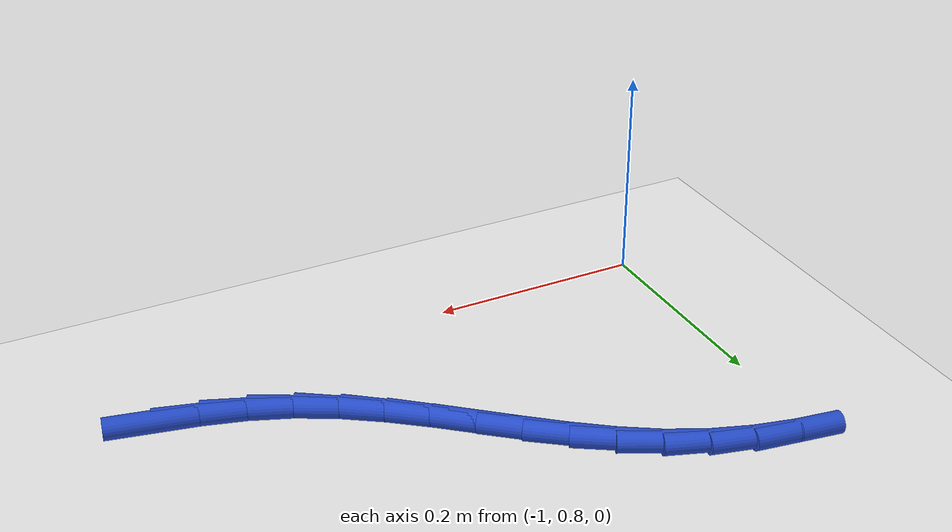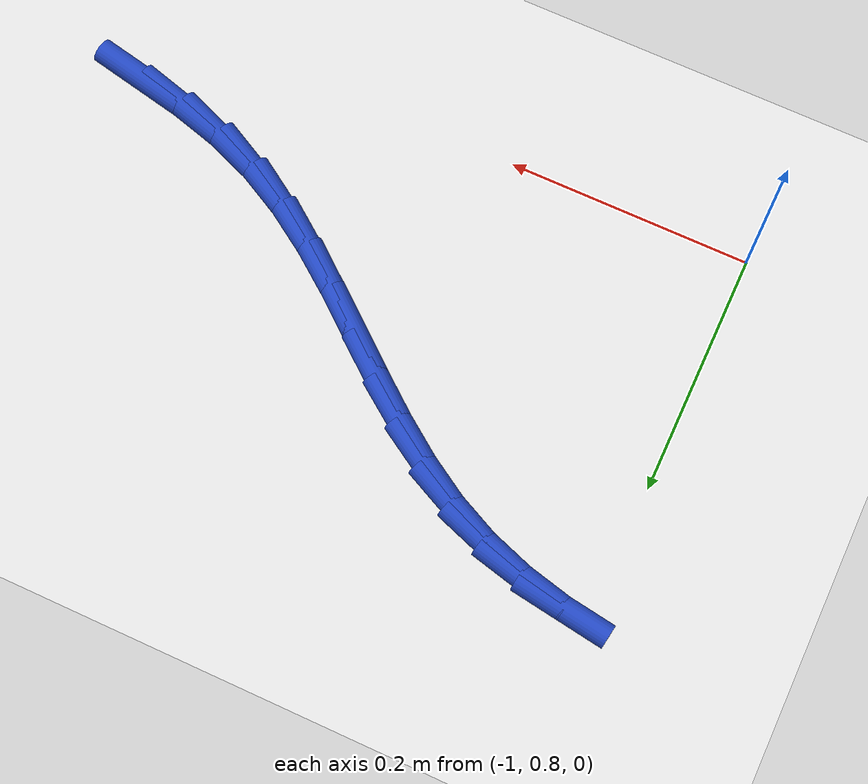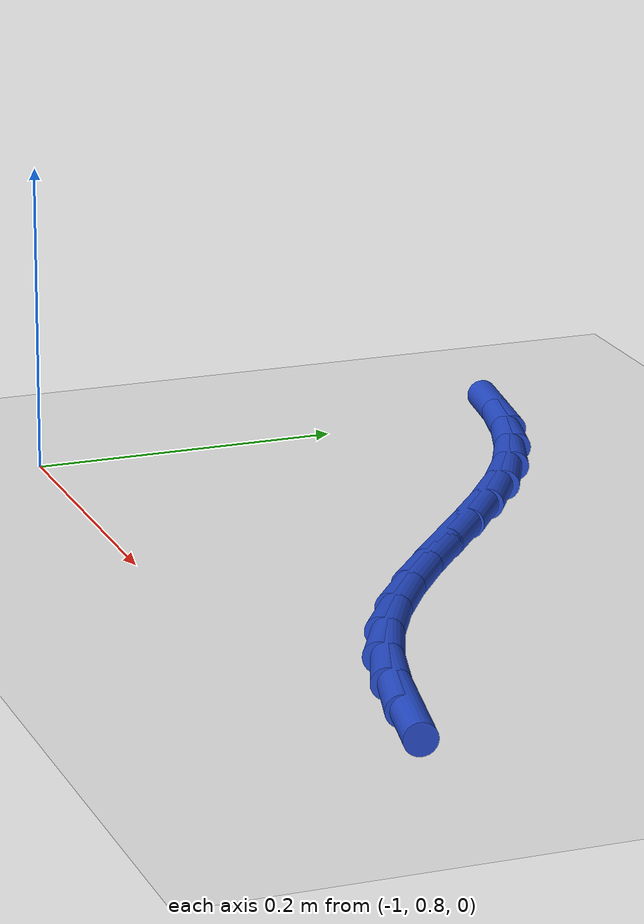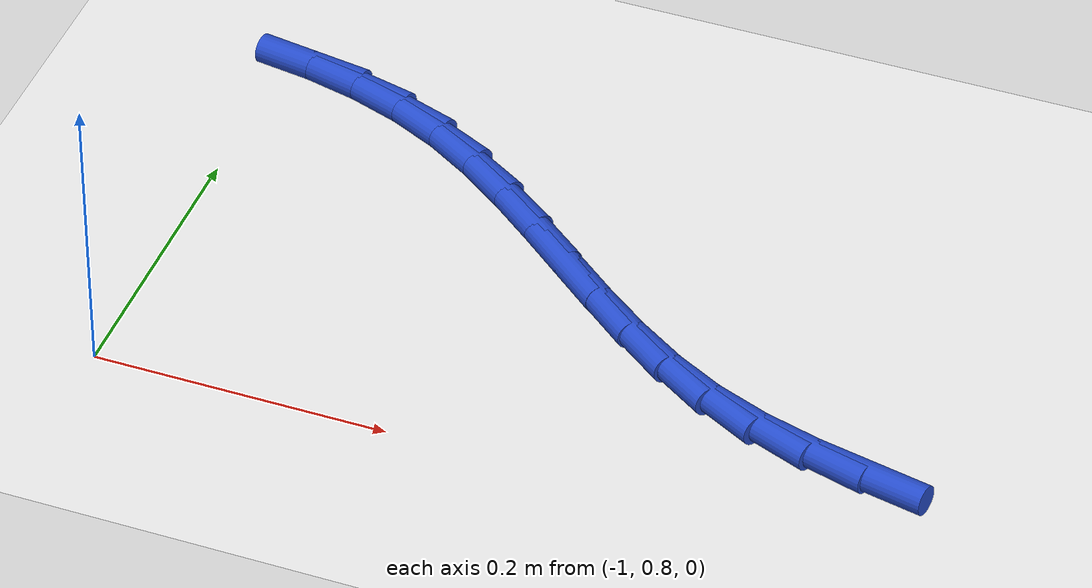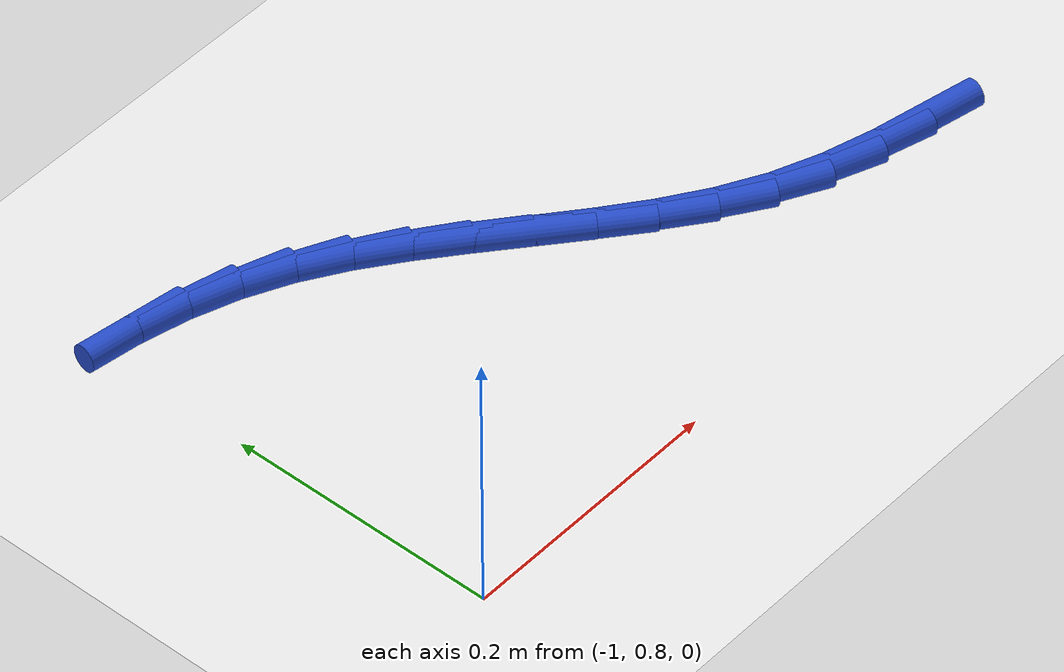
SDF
<sdf version="1.6">
 <world name="default">
  <model name="ground_plane">
   <static>1</static>
   <link name="link">
    <collision name="collision">
     <geometry><plane><normal>0 0 1</normal><size>100 100</size></plane></geometry>
     <surface><friction><ode><mu>100</mu><mu2>50</mu2></ode></friction></surface>
    </collision>
    <visual name="visual">
     <cast_shadows>0</cast_shadows>
     <geometry><plane><normal>0 0 1</normal><size>100 100</size></plane></geometry>
     <material>
      <script><uri>file://media/materials/scripts/gazebo.material</uri><name>Gazebo/WhiteGlow</name></script>
     </material>
    </visual>
   </link>
  </model>
  <model name="line">
   <link name="link_28">
    <pose>-0.49961038093250837 0.8582758620107347 0.01 0 1.57 -0.2033821145523766</pose>
    <collision name="collision">
     <geometry><cylinder><radius>0.01</radius><length>0.08</length></cylinder></geometry>
    </collision>
    <visual name="visual">
     <material>
      <script><name>Gazebo/Blue</name><uri>file://media/materials/scripts/gazebo.material</uri></script>
     </material>
     <geometry><cylinder><radius>0.01</radius><length>0.08</length></cylinder></geometry>
    </visual>
   </link>
   <link name="link_29">
    <pose>-0.5395458224647537 0.866511890082913 0.01 0 1.57 -0.2724190725787094</pose>
    <collision name="collision">
     <geometry><cylinder><radius>0.01</radius><length>0.08</length></cylinder></geometry>
    </collision>
    <visual name="visual">
     <material>
      <script><name>Gazebo/Blue</name><uri>file://media/materials/scripts/gazebo.material</uri></script>
     </material>
     <geometry><cylinder><radius>0.01</radius><length>0.08</length></cylinder></geometry>
    </visual>
   </link>
   <link name="link_30">
    <pose>-0.5783035571757615 0.8773394154693307 0.01 0 1.57 -0.37254192159076943</pose>
    <collision name="collision">
     <geometry><cylinder><radius>0.01</radius><length>0.08</length></cylinder></geometry>
    </collision>
    <visual name="visual">
     <material>
      <script><name>Gazebo/Blue</name><uri>file://media/materials/scripts/gazebo.material</uri></script>
     </material>
     <geometry><cylinder><radius>0.01</radius><length>0.08</length></cylinder></geometry>
    </visual>
   </link>
   <link name="link_31">
    <pose>-0.6152327723834674 0.891770997392256 0.01 0 1.57 -0.4891496441528137</pose>
    <collision name="collision">
     <geometry><cylinder><radius>0.01</radius><length>0.08</length></cylinder></geometry>
    </collision>
    <visual name="visual">
     <material>
      <script><name>Gazebo/Blue</name><uri>file://media/materials/scripts/gazebo.material</uri></script>
     </material>
     <geometry><cylinder><radius>0.01</radius><length>0.08</length></cylinder></geometry>
    </visual>
   </link>
   <link name="link_32">
    <pose>-0.6499903980548309 0.9102723549155197 0.01 0 1.57 -0.5831332911938399</pose>
    <collision name="collision">
     <geometry><cylinder><radius>0.01</radius><length>0.08</length></cylinder></geometry>
    </collision>
    <visual name="visual">
     <material>
      <script><name>Gazebo/Blue</name><uri>file://media/materials/scripts/gazebo.material</uri></script>
     </material>
     <geometry><cylinder><radius>0.01</radius><length>0.08</length></cylinder></geometry>
    </visual>
   </link>
   <link name="link_33">
    <pose>-0.6829587979100286 0.9320201550011309 0.01 0 1.57 -0.6482492501307774</pose>
    <collision name="collision">
     <geometry><cylinder><radius>0.01</radius><length>0.08</length></cylinder></geometry>
    </collision>
    <visual name="visual">
     <material>
      <script><name>Gazebo/Blue</name><uri>file://media/materials/scripts/gazebo.material</uri></script>
     </material>
     <geometry><cylinder><radius>0.01</radius><length>0.08</length></cylinder></geometry>
    </visual>
   </link>
   <link name="link_34">
    <pose>-0.7146248042198272 0.9560054302866448 0.01 0 1.57 -0.6851955144747639</pose>
    <collision name="collision">
     <geometry><cylinder><radius>0.01</radius><length>0.08</length></cylinder></geometry>
    </collision>
    <visual name="visual">
     <material>
      <script><name>Gazebo/Blue</name><uri>file://media/materials/scripts/gazebo.material</uri></script>
     </material>
     <geometry><cylinder><radius>0.01</radius><length>0.08</length></cylinder></geometry>
    </visual>
   </link>
   <link name="link_35">
    <pose>-0.7454752492549945 0.9812192134096167 0.01 0 1.57 -0.6947104365108867</pose>
    <collision name="collision">
     <geometry><cylinder><radius>0.01</radius><length>0.08</length></cylinder></geometry>
    </collision>
    <visual name="visual">
     <material>
      <script><name>Gazebo/Blue</name><uri>file://media/materials/scripts/gazebo.material</uri></script>
     </material>
     <geometry><cylinder><radius>0.01</radius><length>0.08</length></cylinder></geometry>
    </visual>
   </link>
   <link name="link_36">
    <pose>-0.775996965286298 1.0066525370076025 0.01 0 1.57 -0.6767260849222654</pose>
    <collision name="collision">
     <geometry><cylinder><radius>0.01</radius><length>0.08</length></cylinder></geometry>
    </collision>
    <visual name="visual">
     <material>
      <script><name>Gazebo/Blue</name><uri>file://media/materials/scripts/gazebo.material</uri></script>
     </material>
     <geometry><cylinder><radius>0.01</radius><length>0.08</length></cylinder></geometry>
    </visual>
   </link>
   <link name="link_37">
    <pose>-0.8066767845845049 1.0312964337181578 0.01 0 1.57 -0.6301284305034272</pose>
    <collision name="collision">
     <geometry><cylinder><radius>0.01</radius><length>0.08</length></cylinder></geometry>
    </collision>
    <visual name="visual">
     <material>
      <script><name>Gazebo/Blue</name><uri>file://media/materials/scripts/gazebo.material</uri></script>
     </material>
     <geometry><cylinder><radius>0.01</radius><length>0.08</length></cylinder></geometry>
    </visual>
   </link>
   <link name="link_38">
    <pose>-0.8380015394203821 1.0541419361788373 0.01 0 1.57 -0.5531039544266814</pose>
    <collision name="collision">
     <geometry><cylinder><radius>0.01</radius><length>0.08</length></cylinder></geometry>
    </collision>
    <visual name="visual">
     <material>
      <script><name>Gazebo/Blue</name><uri>file://media/materials/scripts/gazebo.material</uri></script>
     </material>
     <geometry><cylinder><radius>0.01</radius><length>0.08</length></cylinder></geometry>
    </visual>
   </link>
   <link name="link_39">
    <pose>-0.870458062064698 1.0741800770271976 0.01 0 1.57 -0.4468984612108868</pose>
    <collision name="collision">
     <geometry><cylinder><radius>0.01</radius><length>0.08</length></cylinder></geometry>
    </collision>
    <visual name="visual">
     <material>
      <script><name>Gazebo/Blue</name><uri>file://media/materials/scripts/gazebo.material</uri></script>
     </material>
     <geometry><cylinder><radius>0.01</radius><length>0.08</length></cylinder></geometry>
    </visual>
   </link>
   <link name="link_40">
    <pose>-0.9044886577543308 1.0904887471534044 0.01 0 1.57 -0.3366890647242131</pose>
    <collision name="collision">
     <geometry><cylinder><radius>0.01</radius><length>0.08</length></cylinder></geometry>
    </collision>
    <visual name="visual">
     <material>
      <script><name>Gazebo/Blue</name><uri>file://media/materials/scripts/gazebo.material</uri></script>
     </material>
     <geometry><cylinder><radius>0.01</radius><length>0.08</length></cylinder></geometry>
    </visual>
   </link>
   <link name="link_41">
    <pose>-0.9401183994672703 1.1029597264892868 0.01 0 1.57 -0.2376840402317538</pose>
    <collision name="collision">
     <geometry><cylinder><radius>0.01</radius><length>0.08</length></cylinder></geometry>
    </collision>
    <visual name="visual">
     <material>
      <script><name>Gazebo/Blue</name><uri>file://media/materials/scripts/gazebo.material</uri></script>
     </material>
     <geometry><cylinder><radius>0.01</radius><length>0.08</length></cylinder></geometry>
    </visual>
   </link>
   <link name="link_42">
    <pose>-0.9771442636998153 1.1119297395339647 0.01 0 1.57 -0.15088027971425613</pose>
    <collision name="collision">
     <geometry><cylinder><radius>0.01</radius><length>0.08</length></cylinder></geometry>
    </collision>
    <visual name="visual">
     <material>
      <script><name>Gazebo/Blue</name><uri>file://media/materials/scripts/gazebo.material</uri></script>
     </material>
     <geometry><cylinder><radius>0.01</radius><length>0.08</length></cylinder></geometry>
    </visual>
   </link>
  </model>
 </world>
</sdf>
